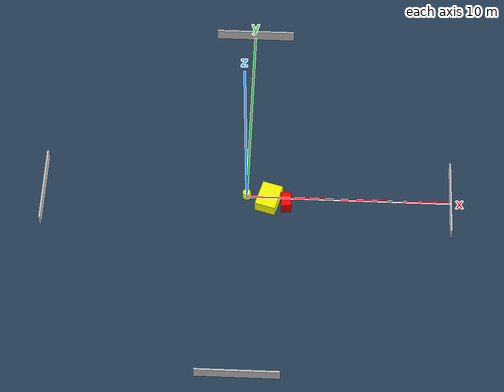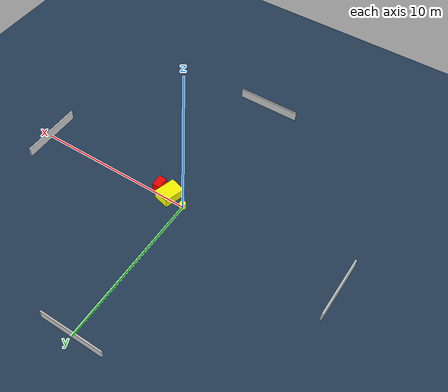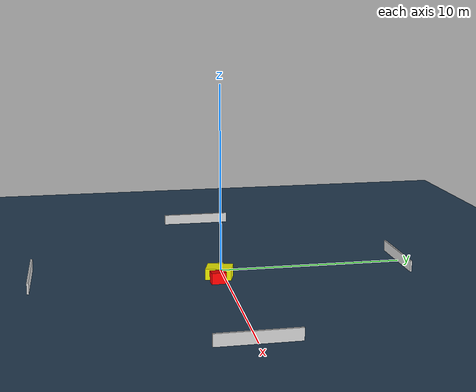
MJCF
<?xml version="1.0" ?>
<mujoco model="generated_environment">
  <option timestep="0.01" integrator="RK4" cone="elliptic"/>
  <default>
    <geom density="1"/>
  </default>
  <asset>
    <texture builtin="gradient" height="3072" name="skybox" rgb1="0.3 0.5 0.7" rgb2="0 0 0" type="skybox" width="512"/>
    <texture builtin="checker" height="300" name="groundplane" rgb1="0.2 0.3 0.4" rgb2="0.1 0.2 0.3" type="2d" width="300"/>
    <material name="groundplane" reflectance="0.2" texrepeat="5 5" texture="groundplane"/>
  </asset>
  <worldbody>
    <light dir="0 0 -1" directional="true" pos="0 0 1.5"/>
    <geom condim="3" friction="0.5 0.005 0.001" material="groundplane" name="floor" pos="0 0 0" size="0 0 0.05" type="plane"/>
    <body name="walls">
      <geom name="wall_1" condim="4" pos="-10.0 0.0 0.3" rgba="0.800000011920929 0.800000011920929 0.800000011920929 1.0" size="0.05 2.0 0.3" type="box"/>
      <geom name="wall_2" condim="4" pos="10.0 0.0 0.3" rgba="0.800000011920929 0.800000011920929 0.800000011920929 1.0" size="0.05 2.0 0.3" type="box"/>
      <geom name="wall_3" condim="4" pos="0.0 -10.0 0.3" rgba="0.800000011920929 0.800000011920929 0.800000011920929 1.0" size="2.0 0.05 0.3" type="box"/>
      <geom name="wall_4" condim="4" pos="0.0 10.0 0.3" rgba="0.800000011920929 0.800000011920929 0.800000011920929 1.0" size="2.0 0.05 0.3" type="box"/>
    </body>
    <body name="robot">
      <joint name="joint_x" type="slide" pos="0 0 0" axis="1 0 0"/>
      <joint name="joint_y" type="slide" pos="0 0 0" axis="0 1 0"/>
      <geom name="robot" type="cylinder" pos="0.0 0.0 0.2" size="0.2 0.2 0.0" mass="5.0" friction="1.0 0.005 0.0001" condim="4" rgba="1.0 1.0 0.0 1.0"/>
    </body>
    <body name="obstacle_1_movable">
      <geom name="obstacle_1_movable" condim="4" pos="1.0970021492316742 -0.24266982256246103 0.3" euler="0 0 164.06885260856612" friction="0.0 0.005 0.001" rgba="1.0 1.0 0.0 1.0" size="0.5079268584952079 0.6791741233492299 0.3" type="box" mass="0.1"/>
      <joint type="free"/>
    </body>
    <body name="obstacle_2_static">
      <geom name="obstacle_2_static" condim="4" pos="1.9471886991418061 -0.44329213638578363 0.3" euler="0 0 3.597997636760746" friction="0.0 0.005 0.001" rgba="1.0 0.0 0.0 1.0" size="0.24803667583756728 0.3876643542650298 0.3" type="box"/>
    </body>
  </worldbody>
  <actuator>
    <motor name="actuator_x" joint="joint_x" gear="1" ctrlrange="-1 1"/>
    <motor name="actuator_y" joint="joint_y" gear="1" ctrlrange="-1 1"/>
  </actuator>
</mujoco>
